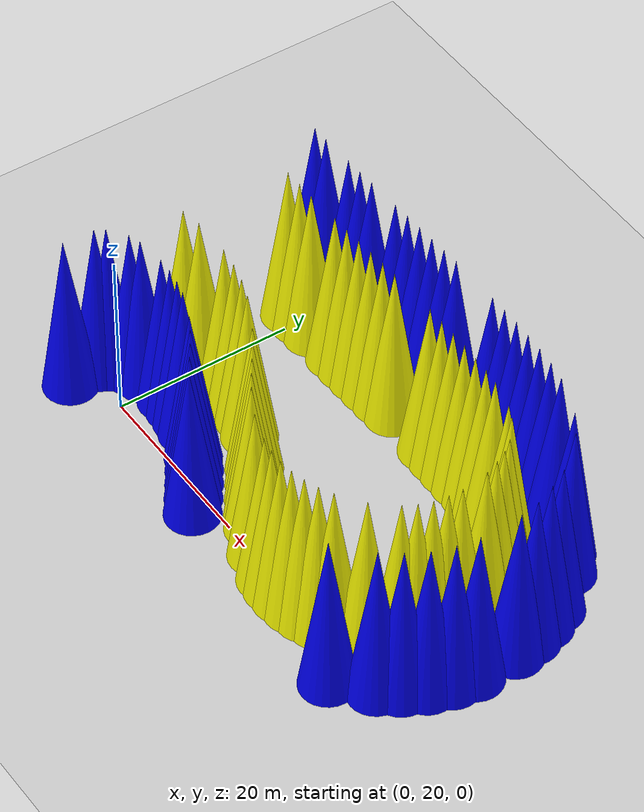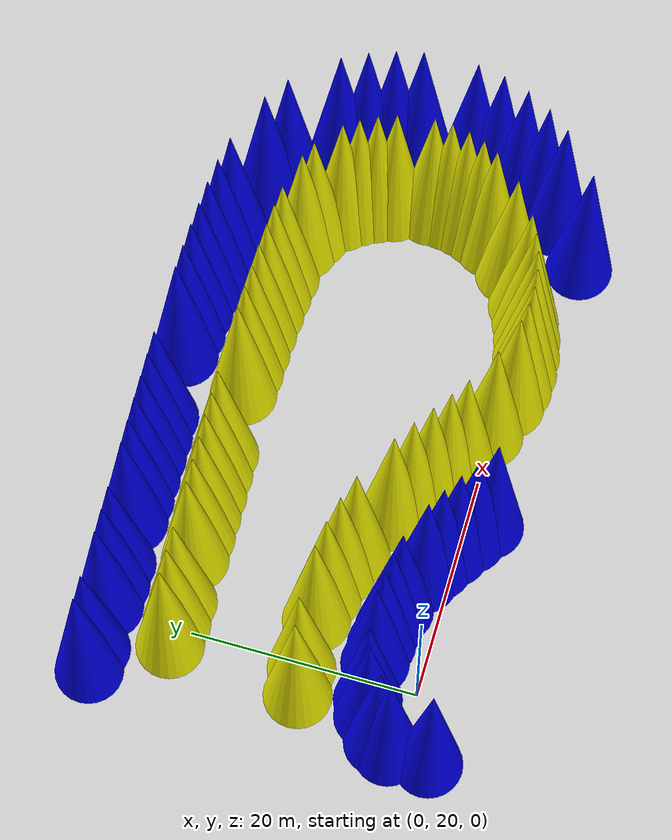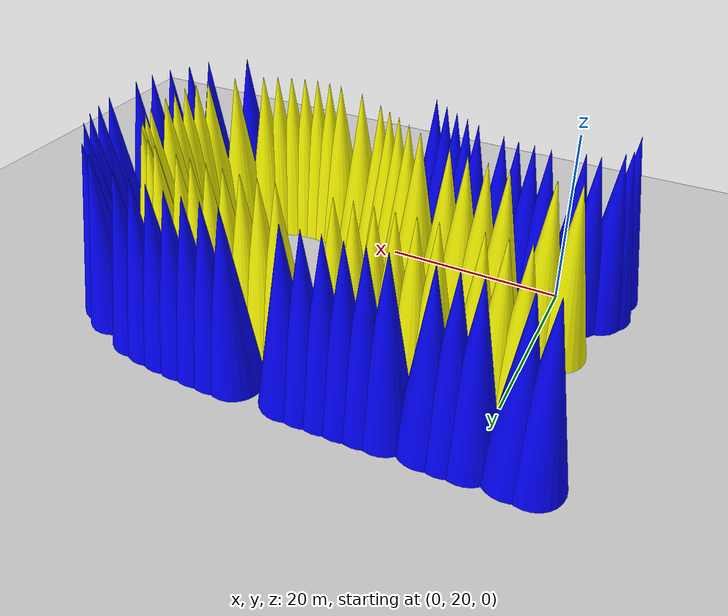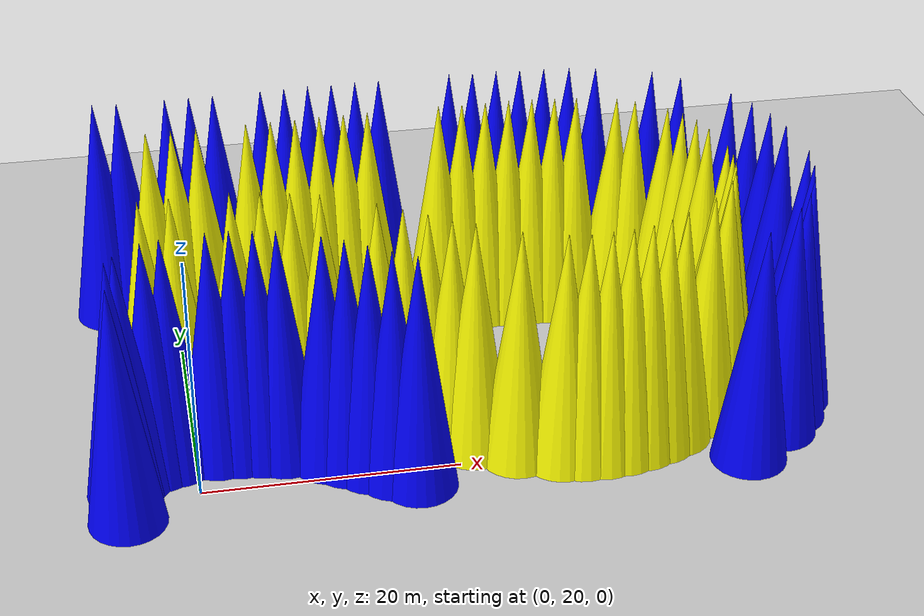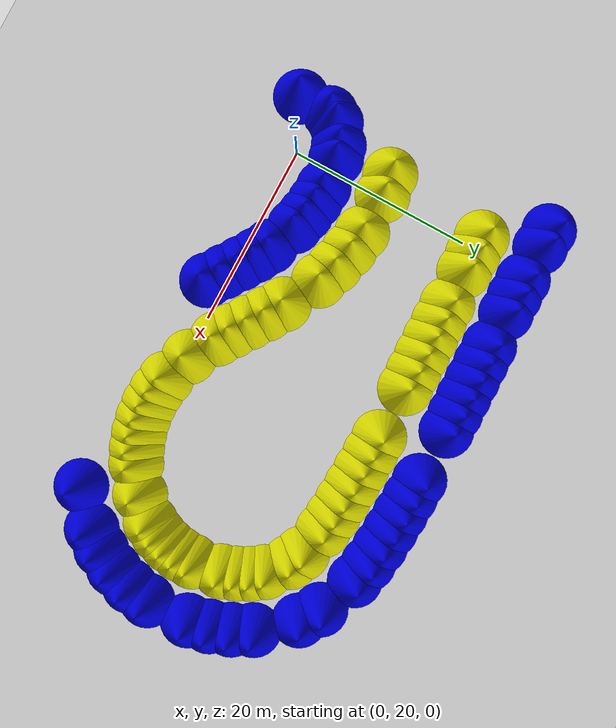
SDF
<sdf version="1.9">
 <world name="track">
  <model name="ground_plane">
   <static>true</static>
   <link name="link">
    <collision name="collision">
     <geometry><plane><normal>0 0 1</normal><size>100 100</size></plane></geometry>
    </collision>
    <visual name="visual">
     <geometry><plane><normal>0 0 1</normal><size>100 100</size></plane></geometry>
     <material>
      <ambient>0.8 0.8 0.8 1</ambient>
      <diffuse>0.8 0.8 0.8 1</diffuse>
      <specular>0.8 0.8 0.8 1</specular>
     </material>
    </visual>
    <inertial>
     <mass>1</mass>
     <inertia><ixx>1</ixx><ixy>0</ixy><ixz>0</ixz><iyy>1</iyy><iyz>0</iyz><izz>1</izz></inertia>
    </inertial>
   </link>
  </model>
  <model name="cones">
   <link name="cone_0_link">
    <collision name="cone_0_collision">
     <geometry><mesh><uri>model://cone/meshes/cone.stl</uri></mesh></geometry>
    </collision>
    <visual name="cone_0_visual">
     <geometry><mesh><uri>model://cone/meshes/cone.stl</uri></mesh></geometry>
     <material><ambient>1 1 0 1</ambient><diffuse>1 1 0 1</diffuse><specular>1 1 0 1</specular></material>
    </visual>
    <pose>6.49447171658257 41.7389113024907 0.0 0 0 0</pose>
   </link>
   <link name="cone_1_link">
    <collision name="cone_1_collision">
     <geometry><mesh><uri>model://cone/meshes/cone.stl</uri></mesh></geometry>
    </collision>
    <visual name="cone_1_visual">
     <geometry><mesh><uri>model://cone/meshes/cone.stl</uri></mesh></geometry>
     <material><ambient>1 1 0 1</ambient><diffuse>1 1 0 1</diffuse><specular>1 1 0 1</specular></material>
    </visual>
    <pose>8.49189149682204 41.8037451937836 0.0 0 0 0</pose>
   </link>
   <link name="cone_2_link">
    <collision name="cone_2_collision">
     <geometry><mesh><uri>model://cone/meshes/cone.stl</uri></mesh></geometry>
    </collision>
    <visual name="cone_2_visual">
     <geometry><mesh><uri>model://cone/meshes/cone.stl</uri></mesh></geometry>
     <material><ambient>1 1 0 1</ambient><diffuse>1 1 0 1</diffuse><specular>1 1 0 1</specular></material>
    </visual>
    <pose>10.4848751821667 41.8690573815958 0.0 0 0 0</pose>
   </link>
   <link name="cone_3_link">
    <collision name="cone_3_collision">
     <geometry><mesh><uri>model://cone/meshes/cone.stl</uri></mesh></geometry>
    </collision>
    <visual name="cone_3_visual">
     <geometry><mesh><uri>model://cone/meshes/cone.stl</uri></mesh></geometry>
     <material><ambient>1 1 0 1</ambient><diffuse>1 1 0 1</diffuse><specular>1 1 0 1</specular></material>
    </visual>
    <pose>12.473517040832 41.9319164105607 0.0 0 0 0</pose>
   </link>
   <link name="cone_4_link">
    <collision name="cone_4_collision">
     <geometry><mesh><uri>model://cone/meshes/cone.stl</uri></mesh></geometry>
    </collision>
    <visual name="cone_4_visual">
     <geometry><mesh><uri>model://cone/meshes/cone.stl</uri></mesh></geometry>
     <material><ambient>1 1 0 1</ambient><diffuse>1 1 0 1</diffuse><specular>1 1 0 1</specular></material>
    </visual>
    <pose>14.4579005366844 41.9894100214277 0.0 0 0 0</pose>
   </link>
   <link name="cone_5_link">
    <collision name="cone_5_collision">
     <geometry><mesh><uri>model://cone/meshes/cone.stl</uri></mesh></geometry>
    </collision>
    <visual name="cone_5_visual">
     <geometry><mesh><uri>model://cone/meshes/cone.stl</uri></mesh></geometry>
     <material><ambient>1 1 0 1</ambient><diffuse>1 1 0 1</diffuse><specular>1 1 0 1</specular></material>
    </visual>
    <pose>16.4380855350346 42.0386448286094 0.0 0 0 0</pose>
   </link>
   <link name="cone_6_link">
    <collision name="cone_6_collision">
     <geometry><mesh><uri>model://cone/meshes/cone.stl</uri></mesh></geometry>
    </collision>
    <visual name="cone_6_visual">
     <geometry><mesh><uri>model://cone/meshes/cone.stl</uri></mesh></geometry>
     <material><ambient>1 1 0 1</ambient><diffuse>1 1 0 1</diffuse><specular>1 1 0 1</specular></material>
    </visual>
    <pose>22.3534294484539 42.1081444836209 0.0 0 0 0</pose>
   </link>
   <link name="cone_7_link">
    <collision name="cone_7_collision">
     <geometry><mesh><uri>model://cone/meshes/cone.stl</uri></mesh></geometry>
    </collision>
    <visual name="cone_7_visual">
     <geometry><mesh><uri>model://cone/meshes/cone.stl</uri></mesh></geometry>
     <material><ambient>1 1 0 1</ambient><diffuse>1 1 0 1</diffuse><specular>1 1 0 1</specular></material>
    </visual>
    <pose>24.3165071700586 42.0957886616701 0.0 0 0 0</pose>
   </link>
   <link name="cone_8_link">
    <collision name="cone_8_collision">
     <geometry><mesh><uri>model://cone/meshes/cone.stl</uri></mesh></geometry>
    </collision>
    <visual name="cone_8_visual">
     <geometry><mesh><uri>model://cone/meshes/cone.stl</uri></mesh></geometry>
     <material><ambient>1 1 0 1</ambient><diffuse>1 1 0 1</diffuse><specular>1 1 0 1</specular></material>
    </visual>
    <pose>26.2748937812757 42.0609961552005 0.0 0 0 0</pose>
   </link>
   <link name="cone_9_link">
    <collision name="cone_9_collision">
     <geometry><mesh><uri>model://cone/meshes/cone.stl</uri></mesh></geometry>
    </collision>
    <visual name="cone_9_visual">
     <geometry><mesh><uri>model://cone/meshes/cone.stl</uri></mesh></geometry>
     <material><ambient>1 1 0 1</ambient><diffuse>1 1 0 1</diffuse><specular>1 1 0 1</specular></material>
    </visual>
    <pose>28.2282468521326 42.0009961057027 0.0 0 0 0</pose>
   </link>
   <link name="cone_10_link">
    <collision name="cone_10_collision">
     <geometry><mesh><uri>model://cone/meshes/cone.stl</uri></mesh></geometry>
    </collision>
    <visual name="cone_10_visual">
     <geometry><mesh><uri>model://cone/meshes/cone.stl</uri></mesh></geometry>
     <material><ambient>1 1 0 1</ambient><diffuse>1 1 0 1</diffuse><specular>1 1 0 1</specular></material>
    </visual>
    <pose>30.1761149294924 41.9130441723441 0.0 0 0 0</pose>
   </link>
   <link name="cone_11_link">
    <collision name="cone_11_collision">
     <geometry><mesh><uri>model://cone/meshes/cone.stl</uri></mesh></geometry>
    </collision>
    <visual name="cone_11_visual">
     <geometry><mesh><uri>model://cone/meshes/cone.stl</uri></mesh></geometry>
     <material><ambient>1 1 0 1</ambient><diffuse>1 1 0 1</diffuse><specular>1 1 0 1</specular></material>
    </visual>
    <pose>32.0795946202318 41.7896079706255 0.0 0 0 0</pose>
   </link>
   <link name="cone_12_link">
    <collision name="cone_12_collision">
     <geometry><mesh><uri>model://cone/meshes/cone.stl</uri></mesh></geometry>
    </collision>
    <visual name="cone_12_visual">
     <geometry><mesh><uri>model://cone/meshes/cone.stl</uri></mesh></geometry>
     <material><ambient>1 1 0 1</ambient><diffuse>1 1 0 1</diffuse><specular>1 1 0 1</specular></material>
    </visual>
    <pose>33.88171993278 41.5914171121172 0.0 0 0 0</pose>
   </link>
   <link name="cone_13_link">
    <collision name="cone_13_collision">
     <geometry><mesh><uri>model://cone/meshes/cone.stl</uri></mesh></geometry>
    </collision>
    <visual name="cone_13_visual">
     <geometry><mesh><uri>model://cone/meshes/cone.stl</uri></mesh></geometry>
     <material><ambient>1 1 0 1</ambient><diffuse>1 1 0 1</diffuse><specular>1 1 0 1</specular></material>
    </visual>
    <pose>37.1238045770298 40.8042280456036 0.0 0 0 0</pose>
   </link>
   <link name="cone_14_link">
    <collision name="cone_14_collision">
     <geometry><mesh><uri>model://cone/meshes/cone.stl</uri></mesh></geometry>
    </collision>
    <visual name="cone_14_visual">
     <geometry><mesh><uri>model://cone/meshes/cone.stl</uri></mesh></geometry>
     <material><ambient>1 1 0 1</ambient><diffuse>1 1 0 1</diffuse><specular>1 1 0 1</specular></material>
    </visual>
    <pose>38.5108000329817 40.1631834270328 0.0 0 0 0</pose>
   </link>
   <link name="cone_15_link">
    <collision name="cone_15_collision">
     <geometry><mesh><uri>model://cone/meshes/cone.stl</uri></mesh></geometry>
    </collision>
    <visual name="cone_15_visual">
     <geometry><mesh><uri>model://cone/meshes/cone.stl</uri></mesh></geometry>
     <material><ambient>1 1 0 1</ambient><diffuse>1 1 0 1</diffuse><specular>1 1 0 1</specular></material>
    </visual>
    <pose>40.7498148915033 38.2980872410971 0.0 0 0 0</pose>
   </link>
   <link name="cone_16_link">
    <collision name="cone_16_collision">
     <geometry><mesh><uri>model://cone/meshes/cone.stl</uri></mesh></geometry>
    </collision>
    <visual name="cone_16_visual">
     <geometry><mesh><uri>model://cone/meshes/cone.stl</uri></mesh></geometry>
     <material><ambient>1 1 0 1</ambient><diffuse>1 1 0 1</diffuse><specular>1 1 0 1</specular></material>
    </visual>
    <pose>41.6428012725483 37.057274095852 0.0 0 0 0</pose>
   </link>
   <link name="cone_17_link">
    <collision name="cone_17_collision">
     <geometry><mesh><uri>model://cone/meshes/cone.stl</uri></mesh></geometry>
    </collision>
    <visual name="cone_17_visual">
     <geometry><mesh><uri>model://cone/meshes/cone.stl</uri></mesh></geometry>
     <material><ambient>1 1 0 1</ambient><diffuse>1 1 0 1</diffuse><specular>1 1 0 1</specular></material>
    </visual>
    <pose>42.3684952713925 35.6541128117207 0.0 0 0 0</pose>
   </link>
   <link name="cone_18_link">
    <collision name="cone_18_collision">
     <geometry><mesh><uri>model://cone/meshes/cone.stl</uri></mesh></geometry>
    </collision>
    <visual name="cone_18_visual">
     <geometry><mesh><uri>model://cone/meshes/cone.stl</uri></mesh></geometry>
     <material><ambient>1 1 0 1</ambient><diffuse>1 1 0 1</diffuse><specular>1 1 0 1</specular></material>
    </visual>
    <pose>42.923741279885 34.1220862330776 0.0 0 0 0</pose>
   </link>
   <link name="cone_19_link">
    <collision name="cone_19_collision">
     <geometry><mesh><uri>model://cone/meshes/cone.stl</uri></mesh></geometry>
    </collision>
    <visual name="cone_19_visual">
     <geometry><mesh><uri>model://cone/meshes/cone.stl</uri></mesh></geometry>
     <material><ambient>1 1 0 1</ambient><diffuse>1 1 0 1</diffuse><specular>1 1 0 1</specular></material>
    </visual>
    <pose>43.4562377484922 30.9418382209873 0.0 0 0 0</pose>
   </link>
   <link name="cone_20_link">
    <collision name="cone_20_collision">
     <geometry><mesh><uri>model://cone/meshes/cone.stl</uri></mesh></geometry>
    </collision>
    <visual name="cone_20_visual">
     <geometry><mesh><uri>model://cone/meshes/cone.stl</uri></mesh></geometry>
     <material><ambient>1 1 0 1</ambient><diffuse>1 1 0 1</diffuse><specular>1 1 0 1</specular></material>
    </visual>
    <pose>43.4041825643156 29.3682424552239 0.0 0 0 0</pose>
   </link>
   <link name="cone_21_link">
    <collision name="cone_21_collision">
     <geometry><mesh><uri>model://cone/meshes/cone.stl</uri></mesh></geometry>
    </collision>
    <visual name="cone_21_visual">
     <geometry><mesh><uri>model://cone/meshes/cone.stl</uri></mesh></geometry>
     <material><ambient>1 1 0 1</ambient><diffuse>1 1 0 1</diffuse><specular>1 1 0 1</specular></material>
    </visual>
    <pose>43.1310900802234 27.8454335309325 0.0 0 0 0</pose>
   </link>
   <link name="cone_22_link">
    <collision name="cone_22_collision">
     <geometry><mesh><uri>model://cone/meshes/cone.stl</uri></mesh></geometry>
    </collision>
    <visual name="cone_22_visual">
     <geometry><mesh><uri>model://cone/meshes/cone.stl</uri></mesh></geometry>
     <material><ambient>1 1 0 1</ambient><diffuse>1 1 0 1</diffuse><specular>1 1 0 1</specular></material>
    </visual>
    <pose>42.6373380962399 26.4081334491868 0.0 0 0 0</pose>
   </link>
   <link name="cone_23_link">
    <collision name="cone_23_collision">
     <geometry><mesh><uri>model://cone/meshes/cone.stl</uri></mesh></geometry>
    </collision>
    <visual name="cone_23_visual">
     <geometry><mesh><uri>model://cone/meshes/cone.stl</uri></mesh></geometry>
     <material><ambient>1 1 0 1</ambient><diffuse>1 1 0 1</diffuse><specular>1 1 0 1</specular></material>
    </visual>
    <pose>41.92136068956 25.0723633391567 0.0 0 0 0</pose>
   </link>
   <link name="cone_24_link">
    <collision name="cone_24_collision">
     <geometry><mesh><uri>model://cone/meshes/cone.stl</uri></mesh></geometry>
    </collision>
    <visual name="cone_24_visual">
     <geometry><mesh><uri>model://cone/meshes/cone.stl</uri></mesh></geometry>
     <material><ambient>1 1 0 1</ambient><diffuse>1 1 0 1</diffuse><specular>1 1 0 1</specular></material>
    </visual>
    <pose>39.8493389129556 22.6733478226331 0.0 0 0 0</pose>
   </link>
   <link name="cone_25_link">
    <collision name="cone_25_collision">
     <geometry><mesh><uri>model://cone/meshes/cone.stl</uri></mesh></geometry>
    </collision>
    <visual name="cone_25_visual">
     <geometry><mesh><uri>model://cone/meshes/cone.stl</uri></mesh></geometry>
     <material><ambient>1 1 0 1</ambient><diffuse>1 1 0 1</diffuse><specular>1 1 0 1</specular></material>
    </visual>
    <pose>37.1330772214184 20.7325660900255 0.0 0 0 0</pose>
   </link>
   <link name="cone_26_link">
    <collision name="cone_26_collision">
     <geometry><mesh><uri>model://cone/meshes/cone.stl</uri></mesh></geometry>
    </collision>
    <visual name="cone_26_visual">
     <geometry><mesh><uri>model://cone/meshes/cone.stl</uri></mesh></geometry>
     <material><ambient>1 1 0 1</ambient><diffuse>1 1 0 1</diffuse><specular>1 1 0 1</specular></material>
    </visual>
    <pose>35.6438750732877 19.9947555768891 0.0 0 0 0</pose>
   </link>
   <link name="cone_27_link">
    <collision name="cone_27_collision">
     <geometry><mesh><uri>model://cone/meshes/cone.stl</uri></mesh></geometry>
    </collision>
    <visual name="cone_27_visual">
     <geometry><mesh><uri>model://cone/meshes/cone.stl</uri></mesh></geometry>
     <material><ambient>1 1 0 1</ambient><diffuse>1 1 0 1</diffuse><specular>1 1 0 1</specular></material>
    </visual>
    <pose>34.097019809549 19.4366654165469 0.0 0 0 0</pose>
   </link>
   <link name="cone_28_link">
    <collision name="cone_28_collision">
     <geometry><mesh><uri>model://cone/meshes/cone.stl</uri></mesh></geometry>
    </collision>
    <visual name="cone_28_visual">
     <geometry><mesh><uri>model://cone/meshes/cone.stl</uri></mesh></geometry>
     <material><ambient>1 1 0 1</ambient><diffuse>1 1 0 1</diffuse><specular>1 1 0 1</specular></material>
    </visual>
    <pose>32.5117013027651 19.0709696852617 0.0 0 0 0</pose>
   </link>
   <link name="cone_29_link">
    <collision name="cone_29_collision">
     <geometry><mesh><uri>model://cone/meshes/cone.stl</uri></mesh></geometry>
    </collision>
    <visual name="cone_29_visual">
     <geometry><mesh><uri>model://cone/meshes/cone.stl</uri></mesh></geometry>
     <material><ambient>1 1 0 1</ambient><diffuse>1 1 0 1</diffuse><specular>1 1 0 1</specular></material>
    </visual>
    <pose>30.9105163807122 18.908114245835 0.0 0 0 0</pose>
   </link>
   <link name="cone_30_link">
    <collision name="cone_30_collision">
     <geometry><mesh><uri>model://cone/meshes/cone.stl</uri></mesh></geometry>
    </collision>
    <visual name="cone_30_visual">
     <geometry><mesh><uri>model://cone/meshes/cone.stl</uri></mesh></geometry>
     <material><ambient>1 1 0 1</ambient><diffuse>1 1 0 1</diffuse><specular>1 1 0 1</specular></material>
    </visual>
    <pose>29.305019764528 18.9545691109581 0.0 0 0 0</pose>
   </link>
   <link name="cone_31_link">
    <collision name="cone_31_collision">
     <geometry><mesh><uri>model://cone/meshes/cone.stl</uri></mesh></geometry>
    </collision>
    <visual name="cone_31_visual">
     <geometry><mesh><uri>model://cone/meshes/cone.stl</uri></mesh></geometry>
     <material><ambient>1 1 0 1</ambient><diffuse>1 1 0 1</diffuse><specular>1 1 0 1</specular></material>
    </visual>
    <pose>27.6851829730976 19.2045278218877 0.0 0 0 0</pose>
   </link>
   <link name="cone_32_link">
    <collision name="cone_32_collision">
     <geometry><mesh><uri>model://cone/meshes/cone.stl</uri></mesh></geometry>
    </collision>
    <visual name="cone_32_visual">
     <geometry><mesh><uri>model://cone/meshes/cone.stl</uri></mesh></geometry>
     <material><ambient>1 1 0 1</ambient><diffuse>1 1 0 1</diffuse><specular>1 1 0 1</specular></material>
    </visual>
    <pose>24.4759113345748 20.2570787967781 0.0 0 0 0</pose>
   </link>
   <link name="cone_33_link">
    <collision name="cone_33_collision">
     <geometry><mesh><uri>model://cone/meshes/cone.stl</uri></mesh></geometry>
    </collision>
    <visual name="cone_33_visual">
     <geometry><mesh><uri>model://cone/meshes/cone.stl</uri></mesh></geometry>
     <material><ambient>1 1 0 1</ambient><diffuse>1 1 0 1</diffuse><specular>1 1 0 1</specular></material>
    </visual>
    <pose>21.3685688158133 21.9377743574784 0.0 0 0 0</pose>
   </link>
   <link name="cone_34_link">
    <collision name="cone_34_collision">
     <geometry><mesh><uri>model://cone/meshes/cone.stl</uri></mesh></geometry>
    </collision>
    <visual name="cone_34_visual">
     <geometry><mesh><uri>model://cone/meshes/cone.stl</uri></mesh></geometry>
     <material><ambient>1 1 0 1</ambient><diffuse>1 1 0 1</diffuse><specular>1 1 0 1</specular></material>
    </visual>
    <pose>19.8072187451783 22.9775182612717 0.0 0 0 0</pose>
   </link>
   <link name="cone_35_link">
    <collision name="cone_35_collision">
     <geometry><mesh><uri>model://cone/meshes/cone.stl</uri></mesh></geometry>
    </collision>
    <visual name="cone_35_visual">
     <geometry><mesh><uri>model://cone/meshes/cone.stl</uri></mesh></geometry>
     <material><ambient>1 1 0 1</ambient><diffuse>1 1 0 1</diffuse><specular>1 1 0 1</specular></material>
    </visual>
    <pose>18.2040616100214 24.1054677217171 0.0 0 0 0</pose>
   </link>
   <link name="cone_36_link">
    <collision name="cone_36_collision">
     <geometry><mesh><uri>model://cone/meshes/cone.stl</uri></mesh></geometry>
    </collision>
    <visual name="cone_36_visual">
     <geometry><mesh><uri>model://cone/meshes/cone.stl</uri></mesh></geometry>
     <material><ambient>1 1 0 1</ambient><diffuse>1 1 0 1</diffuse><specular>1 1 0 1</specular></material>
    </visual>
    <pose>16.5291821840059 25.277806927272 0.0 0 0 0</pose>
   </link>
   <link name="cone_37_link">
    <collision name="cone_37_collision">
     <geometry><mesh><uri>model://cone/meshes/cone.stl</uri></mesh></geometry>
    </collision>
    <visual name="cone_37_visual">
     <geometry><mesh><uri>model://cone/meshes/cone.stl</uri></mesh></geometry>
     <material><ambient>1 1 0 1</ambient><diffuse>1 1 0 1</diffuse><specular>1 1 0 1</specular></material>
    </visual>
    <pose>14.7490275765791 26.4446189166734 0.0 0 0 0</pose>
   </link>
   <link name="cone_38_link">
    <collision name="cone_38_collision">
     <geometry><mesh><uri>model://cone/meshes/cone.stl</uri></mesh></geometry>
    </collision>
    <visual name="cone_38_visual">
     <geometry><mesh><uri>model://cone/meshes/cone.stl</uri></mesh></geometry>
     <material><ambient>1 1 0 1</ambient><diffuse>1 1 0 1</diffuse><specular>1 1 0 1</specular></material>
    </visual>
    <pose>10.7566166245341 28.5122919557571 0.0 0 0 0</pose>
   </link>
   <link name="cone_39_link">
    <collision name="cone_39_collision">
     <geometry><mesh><uri>model://cone/meshes/cone.stl</uri></mesh></geometry>
    </collision>
    <visual name="cone_39_visual">
     <geometry><mesh><uri>model://cone/meshes/cone.stl</uri></mesh></geometry>
     <material><ambient>1 1 0 1</ambient><diffuse>1 1 0 1</diffuse><specular>1 1 0 1</specular></material>
    </visual>
    <pose>8.59035703212379 29.2671114310357 0.0 0 0 0</pose>
   </link>
   <link name="cone_40_link">
    <collision name="cone_40_collision">
     <geometry><mesh><uri>model://cone/meshes/cone.stl</uri></mesh></geometry>
    </collision>
    <visual name="cone_40_visual">
     <geometry><mesh><uri>model://cone/meshes/cone.stl</uri></mesh></geometry>
     <material><ambient>1 1 0 1</ambient><diffuse>1 1 0 1</diffuse><specular>1 1 0 1</specular></material>
    </visual>
    <pose>6.36970146209175 29.8034933598624 0.0 0 0 0</pose>
   </link>
   <link name="cone_41_link">
    <collision name="cone_41_collision">
     <geometry><mesh><uri>model://cone/meshes/cone.stl</uri></mesh></geometry>
    </collision>
    <visual name="cone_41_visual">
     <geometry><mesh><uri>model://cone/meshes/cone.stl</uri></mesh></geometry>
     <material><ambient>1 1 0 1</ambient><diffuse>1 1 0 1</diffuse><specular>1 1 0 1</specular></material>
    </visual>
    <pose>4.11753580708921 30.1252372241127 0.0 0 0 0</pose>
   </link>
   <link name="cone_42_link">
    <collision name="cone_42_collision">
     <geometry><mesh><uri>model://cone/meshes/cone.stl</uri></mesh></geometry>
    </collision>
    <visual name="cone_42_visual">
     <geometry><mesh><uri>model://cone/meshes/cone.stl</uri></mesh></geometry>
     <material><ambient>1 1 0 1</ambient><diffuse>1 1 0 1</diffuse><specular>1 1 0 1</specular></material>
    </visual>
    <pose>-0.405973075502234 30.1500578730274 0.0 0 0 0</pose>
   </link>
   <link name="cone_43_link">
    <collision name="cone_43_collision">
     <geometry><mesh><uri>model://cone/meshes/cone.stl</uri></mesh></geometry>
    </collision>
    <visual name="cone_43_visual">
     <geometry><mesh><uri>model://cone/meshes/cone.stl</uri></mesh></geometry>
     <material><ambient>1 1 0 1</ambient><diffuse>1 1 0 1</diffuse><specular>1 1 0 1</specular></material>
    </visual>
    <pose>-2.75740378439869 29.8083496207198 0.0 0 0 0</pose>
   </link>
   <link name="cone_143_link">
    <collision name="cone_143_collision">
     <geometry><mesh><uri>model://cone/meshes/cone.stl</uri></mesh></geometry>
    </collision>
    <visual name="cone_143_visual">
     <geometry><mesh><uri>model://cone/meshes/cone.stl</uri></mesh></geometry>
     <material><ambient>1 1 0 1</ambient><diffuse>1 1 0 1</diffuse><specular>1 1 0 1</specular></material>
    </visual>
    <pose>-1.53976115651896 41.5427010208205 0.0 0 0 0</pose>
   </link>
   <link name="cone_144_link">
    <collision name="cone_144_collision">
     <geometry><mesh><uri>model://cone/meshes/cone.stl</uri></mesh></geometry>
    </collision>
    <visual name="cone_144_visual">
     <geometry><mesh><uri>model://cone/meshes/cone.stl</uri></mesh></geometry>
     <material><ambient>1 1 0 1</ambient><diffuse>1 1 0 1</diffuse><specular>1 1 0 1</specular></material>
    </visual>
    <pose>0.4754310943428 41.5765527022834 0.0 0 0 0</pose>
   </link>
   <link name="cone_145_link">
    <collision name="cone_145_collision">
     <geometry><mesh><uri>model://cone/meshes/cone.stl</uri></mesh></geometry>
    </collision>
    <visual name="cone_145_visual">
     <geometry><mesh><uri>model://cone/meshes/cone.stl</uri></mesh></geometry>
     <material><ambient>1 1 0 1</ambient><diffuse>1 1 0 1</diffuse><specular>1 1 0 1</specular></material>
    </visual>
    <pose>2.48619653317858 41.622438779726 0.0 0 0 0</pose>
   </link>
   <link name="cone_146_link">
    <collision name="cone_146_collision">
     <geometry><mesh><uri>model://cone/meshes/cone.stl</uri></mesh></geometry>
    </collision>
    <visual name="cone_146_visual">
     <geometry><mesh><uri>model://cone/meshes/cone.stl</uri></mesh></geometry>
     <material><ambient>1 1 0 1</ambient><diffuse>1 1 0 1</diffuse><specular>1 1 0 1</specular></material>
    </visual>
    <pose>6.49447171658257 41.7389113024907 0.0 0 0 0</pose>
   </link>
   <link name="cone_147_link">
    <collision name="cone_147_collision">
     <geometry><mesh><uri>model://cone/meshes/cone.stl</uri></mesh></geometry>
    </collision>
    <visual name="cone_147_visual">
     <geometry><mesh><uri>model://cone/meshes/cone.stl</uri></mesh></geometry>
     <material><ambient>1 1 0 1</ambient><diffuse>1 1 0 1</diffuse><specular>1 1 0 1</specular></material>
    </visual>
    <pose>8.49189149682204 41.8037451937836 0.0 0 0 0</pose>
   </link>
   <link name="cone_148_link">
    <collision name="cone_148_collision">
     <geometry><mesh><uri>model://cone/meshes/cone.stl</uri></mesh></geometry>
    </collision>
    <visual name="cone_148_visual">
     <geometry><mesh><uri>model://cone/meshes/cone.stl</uri></mesh></geometry>
     <material><ambient>1 1 0 1</ambient><diffuse>1 1 0 1</diffuse><specular>1 1 0 1</specular></material>
    </visual>
    <pose>10.4848751821667 41.8690573815958 0.0 0 0 0</pose>
   </link>
   <link name="cone_149_link">
    <collision name="cone_149_collision">
     <geometry><mesh><uri>model://cone/meshes/cone.stl</uri></mesh></geometry>
    </collision>
    <visual name="cone_149_visual">
     <geometry><mesh><uri>model://cone/meshes/cone.stl</uri></mesh></geometry>
     <material><ambient>1 1 0 1</ambient><diffuse>1 1 0 1</diffuse><specular>1 1 0 1</specular></material>
    </visual>
    <pose>12.473517040832 41.9319164105607 0.0 0 0 0</pose>
   </link>
   <link name="cone_150_link">
    <collision name="cone_150_collision">
     <geometry><mesh><uri>model://cone/meshes/cone.stl</uri></mesh></geometry>
    </collision>
    <visual name="cone_150_visual">
     <geometry><mesh><uri>model://cone/meshes/cone.stl</uri></mesh></geometry>
     <material><ambient>1 1 0 1</ambient><diffuse>1 1 0 1</diffuse><specular>1 1 0 1</specular></material>
    </visual>
    <pose>14.4579005366844 41.9894100214277 0.0 0 0 0</pose>
   </link>
   <link name="cone_0_link">
    <collision name="cone_0_collision">
     <geometry><mesh><uri>model://cone/meshes/cone.stl</uri></mesh></geometry>
    </collision>
    <visual name="cone_0_visual">
     <geometry><mesh><uri>model://cone/meshes/cone.stl</uri></mesh></geometry>
     <material><ambient>0 0 1 1</ambient><diffuse>0 0 1 1</diffuse><specular>0 0 1 1</specular></material>
    </visual>
    <pose>8.29483356036796 47.8005083348189 0.0 0 0 0</pose>
   </link>
   <link name="cone_1_link">
    <collision name="cone_1_collision">
     <geometry><mesh><uri>model://cone/meshes/cone.stl</uri></mesh></geometry>
    </collision>
    <visual name="cone_1_visual">
     <geometry><mesh><uri>model://cone/meshes/cone.stl</uri></mesh></geometry>
     <material><ambient>0 0 1 1</ambient><diffuse>0 0 1 1</diffuse><specular>0 0 1 1</specular></material>
    </visual>
    <pose>10.2903642978411 47.8659036790991 0.0 0 0 0</pose>
   </link>
   <link name="cone_2_link">
    <collision name="cone_2_collision">
     <geometry><mesh><uri>model://cone/meshes/cone.stl</uri></mesh></geometry>
    </collision>
    <visual name="cone_2_visual">
     <geometry><mesh><uri>model://cone/meshes/cone.stl</uri></mesh></geometry>
     <material><ambient>0 0 1 1</ambient><diffuse>0 0 1 1</diffuse><specular>0 0 1 1</specular></material>
    </visual>
    <pose>12.2903853701921 47.9291209919643 0.0 0 0 0</pose>
   </link>
   <link name="cone_3_link">
    <collision name="cone_3_collision">
     <geometry><mesh><uri>model://cone/meshes/cone.stl</uri></mesh></geometry>
    </collision>
    <visual name="cone_3_visual">
     <geometry><mesh><uri>model://cone/meshes/cone.stl</uri></mesh></geometry>
     <material><ambient>0 0 1 1</ambient><diffuse>0 0 1 1</diffuse><specular>0 0 1 1</specular></material>
    </visual>
    <pose>14.2949817462715 47.9871977358879 0.0 0 0 0</pose>
   </link>
   <link name="cone_4_link">
    <collision name="cone_4_collision">
     <geometry><mesh><uri>model://cone/meshes/cone.stl</uri></mesh></geometry>
    </collision>
    <visual name="cone_4_visual">
     <geometry><mesh><uri>model://cone/meshes/cone.stl</uri></mesh></geometry>
     <material><ambient>0 0 1 1</ambient><diffuse>0 0 1 1</diffuse><specular>0 0 1 1</specular></material>
    </visual>
    <pose>16.3042155724446 48.0371512121282 0.0 0 0 0</pose>
   </link>
   <link name="cone_5_link">
    <collision name="cone_5_collision">
     <geometry><mesh><uri>model://cone/meshes/cone.stl</uri></mesh></geometry>
    </collision>
    <visual name="cone_5_visual">
     <geometry><mesh><uri>model://cone/meshes/cone.stl</uri></mesh></geometry>
     <material><ambient>0 0 1 1</ambient><diffuse>0 0 1 1</diffuse><specular>0 0 1 1</specular></material>
    </visual>
    <pose>18.318112860148 48.0759783968909 0.0 0 0 0</pose>
   </link>
   <link name="cone_6_link">
    <collision name="cone_6_collision">
     <geometry><mesh><uri>model://cone/meshes/cone.stl</uri></mesh></geometry>
    </collision>
    <visual name="cone_6_visual">
     <geometry><mesh><uri>model://cone/meshes/cone.stl</uri></mesh></geometry>
     <material><ambient>0 0 1 1</ambient><diffuse>0 0 1 1</diffuse><specular>0 0 1 1</specular></material>
    </visual>
    <pose>24.3872198920862 48.0953719564451 0.0 0 0 0</pose>
   </link>
   <link name="cone_7_link">
    <collision name="cone_7_collision">
     <geometry><mesh><uri>model://cone/meshes/cone.stl</uri></mesh></geometry>
    </collision>
    <visual name="cone_7_visual">
     <geometry><mesh><uri>model://cone/meshes/cone.stl</uri></mesh></geometry>
     <material><ambient>0 0 1 1</ambient><diffuse>0 0 1 1</diffuse><specular>0 0 1 1</specular></material>
    </visual>
    <pose>26.4188343006777 48.0592693339474 0.0 0 0 0</pose>
   </link>
   <link name="cone_8_link">
    <collision name="cone_8_collision">
     <geometry><mesh><uri>model://cone/meshes/cone.stl</uri></mesh></geometry>
    </collision>
    <visual name="cone_8_visual">
     <geometry><mesh><uri>model://cone/meshes/cone.stl</uri></mesh></geometry>
     <material><ambient>0 0 1 1</ambient><diffuse>0 0 1 1</diffuse><specular>0 0 1 1</specular></material>
    </visual>
    <pose>28.4542241392916 47.9967391176812 0.0 0 0 0</pose>
   </link>
   <link name="cone_9_link">
    <collision name="cone_9_collision">
     <geometry><mesh><uri>model://cone/meshes/cone.stl</uri></mesh></geometry>
    </collision>
    <visual name="cone_9_visual">
     <geometry><mesh><uri>model://cone/meshes/cone.stl</uri></mesh></geometry>
     <material><ambient>0 0 1 1</ambient><diffuse>0 0 1 1</diffuse><specular>0 0 1 1</specular></material>
    </visual>
    <pose>30.4929111587893 47.9046750145358 0.0 0 0 0</pose>
   </link>
   <link name="cone_10_link">
    <collision name="cone_10_collision">
     <geometry><mesh><uri>model://cone/meshes/cone.stl</uri></mesh></geometry>
    </collision>
    <visual name="cone_10_visual">
     <geometry><mesh><uri>model://cone/meshes/cone.stl</uri></mesh></geometry>
     <material><ambient>0 0 1 1</ambient><diffuse>0 0 1 1</diffuse><specular>0 0 1 1</specular></material>
    </visual>
    <pose>32.5715480310539 47.7694057800486 0.0 0 0 0</pose>
   </link>
   <link name="cone_11_link">
    <collision name="cone_11_collision">
     <geometry><mesh><uri>model://cone/meshes/cone.stl</uri></mesh></geometry>
    </collision>
    <visual name="cone_11_visual">
     <geometry><mesh><uri>model://cone/meshes/cone.stl</uri></mesh></geometry>
     <material><ambient>0 0 1 1</ambient><diffuse>0 0 1 1</diffuse><specular>0 0 1 1</specular></material>
    </visual>
    <pose>34.7354354110013 47.5303707137414 0.0 0 0 0</pose>
   </link>
   <link name="cone_12_link">
    <collision name="cone_12_collision">
     <geometry><mesh><uri>model://cone/meshes/cone.stl</uri></mesh></geometry>
    </collision>
    <visual name="cone_12_visual">
     <geometry><mesh><uri>model://cone/meshes/cone.stl</uri></mesh></geometry>
     <material><ambient>0 0 1 1</ambient><diffuse>0 0 1 1</diffuse><specular>0 0 1 1</specular></material>
    </visual>
    <pose>36.9671887094624 47.1090924863221 0.0 0 0 0</pose>
   </link>
   <link name="cone_13_link">
    <collision name="cone_13_collision">
     <geometry><mesh><uri>model://cone/meshes/cone.stl</uri></mesh></geometry>
    </collision>
    <visual name="cone_13_visual">
     <geometry><mesh><uri>model://cone/meshes/cone.stl</uri></mesh></geometry>
     <material><ambient>0 0 1 1</ambient><diffuse>0 0 1 1</diffuse><specular>0 0 1 1</specular></material>
    </visual>
    <pose>41.4608084515852 45.3878796220444 0.0 0 0 0</pose>
   </link>
   <link name="cone_14_link">
    <collision name="cone_14_collision">
     <geometry><mesh><uri>model://cone/meshes/cone.stl</uri></mesh></geometry>
    </collision>
    <visual name="cone_14_visual">
     <geometry><mesh><uri>model://cone/meshes/cone.stl</uri></mesh></geometry>
     <material><ambient>0 0 1 1</ambient><diffuse>0 0 1 1</diffuse><specular>0 0 1 1</specular></material>
    </visual>
    <pose>43.5486168233166 43.9466679046951 0.0 0 0 0</pose>
   </link>
   <link name="cone_15_link">
    <collision name="cone_15_collision">
     <geometry><mesh><uri>model://cone/meshes/cone.stl</uri></mesh></geometry>
    </collision>
    <visual name="cone_15_visual">
     <geometry><mesh><uri>model://cone/meshes/cone.stl</uri></mesh></geometry>
     <material><ambient>0 0 1 1</ambient><diffuse>0 0 1 1</diffuse><specular>0 0 1 1</specular></material>
    </visual>
    <pose>46.7637769841785 40.1838709296144 0.0 0 0 0</pose>
   </link>
   <link name="cone_16_link">
    <collision name="cone_16_collision">
     <geometry><mesh><uri>model://cone/meshes/cone.stl</uri></mesh></geometry>
    </collision>
    <visual name="cone_16_visual">
     <geometry><mesh><uri>model://cone/meshes/cone.stl</uri></mesh></geometry>
     <material><ambient>0 0 1 1</ambient><diffuse>0 0 1 1</diffuse><specular>0 0 1 1</specular></material>
    </visual>
    <pose>47.8711744070693 38.045874156376 0.0 0 0 0</pose>
   </link>
   <link name="cone_17_link">
    <collision name="cone_17_collision">
     <geometry><mesh><uri>model://cone/meshes/cone.stl</uri></mesh></geometry>
    </collision>
    <visual name="cone_17_visual">
     <geometry><mesh><uri>model://cone/meshes/cone.stl</uri></mesh></geometry>
     <material><ambient>0 0 1 1</ambient><diffuse>0 0 1 1</diffuse><specular>0 0 1 1</specular></material>
    </visual>
    <pose>48.6759026786991 35.8287318442088 0.0 0 0 0</pose>
   </link>
   <link name="cone_18_link">
    <collision name="cone_18_collision">
     <geometry><mesh><uri>model://cone/meshes/cone.stl</uri></mesh></geometry>
    </collision>
    <visual name="cone_18_visual">
     <geometry><mesh><uri>model://cone/meshes/cone.stl</uri></mesh></geometry>
     <material><ambient>0 0 1 1</ambient><diffuse>0 0 1 1</diffuse><specular>0 0 1 1</specular></material>
    </visual>
    <pose>49.2095764033813 33.5308461962448 0.0 0 0 0</pose>
   </link>
   <link name="cone_19_link">
    <collision name="cone_19_collision">
     <geometry><mesh><uri>model://cone/meshes/cone.stl</uri></mesh></geometry>
    </collision>
    <visual name="cone_19_visual">
     <geometry><mesh><uri>model://cone/meshes/cone.stl</uri></mesh></geometry>
     <material><ambient>0 0 1 1</ambient><diffuse>0 0 1 1</diffuse><specular>0 0 1 1</specular></material>
    </visual>
    <pose>49.371790659603 28.7456240961468 0.0 0 0 0</pose>
   </link>
   <link name="cone_20_link">
    <collision name="cone_20_collision">
     <geometry><mesh><uri>model://cone/meshes/cone.stl</uri></mesh></geometry>
    </collision>
    <visual name="cone_20_visual">
     <geometry><mesh><uri>model://cone/meshes/cone.stl</uri></mesh></geometry>
     <material><ambient>0 0 1 1</ambient><diffuse>0 0 1 1</diffuse><specular>0 0 1 1</specular></material>
    </visual>
    <pose>48.9402528124274 26.3442245678724 0.0 0 0 0</pose>
   </link>
   <link name="cone_21_link">
    <collision name="cone_21_collision">
     <geometry><mesh><uri>model://cone/meshes/cone.stl</uri></mesh></geometry>
    </collision>
    <visual name="cone_21_visual">
     <geometry><mesh><uri>model://cone/meshes/cone.stl</uri></mesh></geometry>
     <material><ambient>0 0 1 1</ambient><diffuse>0 0 1 1</diffuse><specular>0 0 1 1</specular></material>
    </visual>
    <pose>48.1379348685719 24.0115869446911 0.0 0 0 0</pose>
   </link>
   <link name="cone_22_link">
    <collision name="cone_22_collision">
     <geometry><mesh><uri>model://cone/meshes/cone.stl</uri></mesh></geometry>
    </collision>
    <visual name="cone_22_visual">
     <geometry><mesh><uri>model://cone/meshes/cone.stl</uri></mesh></geometry>
     <material><ambient>0 0 1 1</ambient><diffuse>0 0 1 1</diffuse><specular>0 0 1 1</specular></material>
    </visual>
    <pose>46.9718766730536 21.8331831495909 0.0 0 0 0</pose>
   </link>
   <link name="cone_23_link">
    <collision name="cone_23_collision">
     <geometry><mesh><uri>model://cone/meshes/cone.stl</uri></mesh></geometry>
    </collision>
    <visual name="cone_23_visual">
     <geometry><mesh><uri>model://cone/meshes/cone.stl</uri></mesh></geometry>
     <material><ambient>0 0 1 1</ambient><diffuse>0 0 1 1</diffuse><specular>0 0 1 1</specular></material>
    </visual>
    <pose>45.5183908761479 19.8937545099424 0.0 0 0 0</pose>
   </link>
   <link name="cone_24_link">
    <collision name="cone_24_collision">
     <geometry><mesh><uri>model://cone/meshes/cone.stl</uri></mesh></geometry>
    </collision>
    <visual name="cone_24_visual">
     <geometry><mesh><uri>model://cone/meshes/cone.stl</uri></mesh></geometry>
     <material><ambient>0 0 1 1</ambient><diffuse>0 0 1 1</diffuse><specular>0 0 1 1</specular></material>
    </visual>
    <pose>42.034452284309 16.7521854290723 0.0 0 0 0</pose>
   </link>
   <link name="cone_33_link">
    <collision name="cone_33_collision">
     <geometry><mesh><uri>model://cone/meshes/cone.stl</uri></mesh></geometry>
    </collision>
    <visual name="cone_33_visual">
     <geometry><mesh><uri>model://cone/meshes/cone.stl</uri></mesh></geometry>
     <material><ambient>0 0 1 1</ambient><diffuse>0 0 1 1</diffuse><specular>0 0 1 1</specular></material>
    </visual>
    <pose>16.395185781583 18.0421326577611 0.0 0 0 0</pose>
   </link>
   <link name="cone_34_link">
    <collision name="cone_34_collision">
     <geometry><mesh><uri>model://cone/meshes/cone.stl</uri></mesh></geometry>
    </collision>
    <visual name="cone_34_visual">
     <geometry><mesh><uri>model://cone/meshes/cone.stl</uri></mesh></geometry>
     <material><ambient>0 0 1 1</ambient><diffuse>0 0 1 1</diffuse><specular>0 0 1 1</specular></material>
    </visual>
    <pose>14.7344934919394 19.210358215895 0.0 0 0 0</pose>
   </link>
   <link name="cone_35_link">
    <collision name="cone_35_collision">
     <geometry><mesh><uri>model://cone/meshes/cone.stl</uri></mesh></geometry>
    </collision>
    <visual name="cone_35_visual">
     <geometry><mesh><uri>model://cone/meshes/cone.stl</uri></mesh></geometry>
     <material><ambient>0 0 1 1</ambient><diffuse>0 0 1 1</diffuse><specular>0 0 1 1</specular></material>
    </visual>
    <pose>13.1401972893467 20.3265665388672 0.0 0 0 0</pose>
   </link>
   <link name="cone_36_link">
    <collision name="cone_36_collision">
     <geometry><mesh><uri>model://cone/meshes/cone.stl</uri></mesh></geometry>
    </collision>
    <visual name="cone_36_visual">
     <geometry><mesh><uri>model://cone/meshes/cone.stl</uri></mesh></geometry>
     <material><ambient>0 0 1 1</ambient><diffuse>0 0 1 1</diffuse><specular>0 0 1 1</specular></material>
    </visual>
    <pose>11.5833537070008 21.3477072094266 0.0 0 0 0</pose>
   </link>
   <link name="cone_37_link">
    <collision name="cone_37_collision">
     <geometry><mesh><uri>model://cone/meshes/cone.stl</uri></mesh></geometry>
    </collision>
    <visual name="cone_37_visual">
     <geometry><mesh><uri>model://cone/meshes/cone.stl</uri></mesh></geometry>
     <material><ambient>0 0 1 1</ambient><diffuse>0 0 1 1</diffuse><specular>0 0 1 1</specular></material>
    </visual>
    <pose>10.0428032559345 22.2341839570762 0.0 0 0 0</pose>
   </link>
   <link name="cone_38_link">
    <collision name="cone_38_collision">
     <geometry><mesh><uri>model://cone/meshes/cone.stl</uri></mesh></geometry>
    </collision>
    <visual name="cone_38_visual">
     <geometry><mesh><uri>model://cone/meshes/cone.stl</uri></mesh></geometry>
     <material><ambient>0 0 1 1</ambient><diffuse>0 0 1 1</diffuse><specular>0 0 1 1</specular></material>
    </visual>
    <pose>6.90006888859156 23.510122114402 0.0 0 0 0</pose>
   </link>
   <link name="cone_39_link">
    <collision name="cone_39_collision">
     <geometry><mesh><uri>model://cone/meshes/cone.stl</uri></mesh></geometry>
    </collision>
    <visual name="cone_39_visual">
     <geometry><mesh><uri>model://cone/meshes/cone.stl</uri></mesh></geometry>
     <material><ambient>0 0 1 1</ambient><diffuse>0 0 1 1</diffuse><specular>0 0 1 1</specular></material>
    </visual>
    <pose>5.24310276950825 23.9102111346615 0.0 0 0 0</pose>
   </link>
   <link name="cone_40_link">
    <collision name="cone_40_collision">
     <geometry><mesh><uri>model://cone/meshes/cone.stl</uri></mesh></geometry>
    </collision>
    <visual name="cone_40_visual">
     <geometry><mesh><uri>model://cone/meshes/cone.stl</uri></mesh></geometry>
     <material><ambient>0 0 1 1</ambient><diffuse>0 0 1 1</diffuse><specular>0 0 1 1</specular></material>
    </visual>
    <pose>3.54614319085073 24.1525066527486 0.0 0 0 0</pose>
   </link>
   <link name="cone_41_link">
    <collision name="cone_41_collision">
     <geometry><mesh><uri>model://cone/meshes/cone.stl</uri></mesh></geometry>
    </collision>
    <visual name="cone_41_visual">
     <geometry><mesh><uri>model://cone/meshes/cone.stl</uri></mesh></geometry>
     <material><ambient>0 0 1 1</ambient><diffuse>0 0 1 1</diffuse><specular>0 0 1 1</specular></material>
    </visual>
    <pose>1.82453456285617 24.2384953941222 0.0 0 0 0</pose>
   </link>
   <link name="cone_42_link">
    <collision name="cone_42_collision">
     <geometry><mesh><uri>model://cone/meshes/cone.stl</uri></mesh></geometry>
    </collision>
    <visual name="cone_42_visual">
     <geometry><mesh><uri>model://cone/meshes/cone.stl</uri></mesh></geometry>
     <material><ambient>0 0 1 1</ambient><diffuse>0 0 1 1</diffuse><specular>0 0 1 1</specular></material>
    </visual>
    <pose>-1.49646987010121 23.9423419780574 0.0 0 0 0</pose>
   </link>
   <link name="cone_43_link">
    <collision name="cone_43_collision">
     <geometry><mesh><uri>model://cone/meshes/cone.stl</uri></mesh></geometry>
    </collision>
    <visual name="cone_43_visual">
     <geometry><mesh><uri>model://cone/meshes/cone.stl</uri></mesh></geometry>
     <material><ambient>0 0 1 1</ambient><diffuse>0 0 1 1</diffuse><specular>0 0 1 1</specular></material>
    </visual>
    <pose>-2.88611819700968 23.518850361989 0.0 0 0 0</pose>
   </link>
   <link name="cone_44_link">
    <collision name="cone_44_collision">
     <geometry><mesh><uri>model://cone/meshes/cone.stl</uri></mesh></geometry>
    </collision>
    <visual name="cone_44_visual">
     <geometry><mesh><uri>model://cone/meshes/cone.stl</uri></mesh></geometry>
     <material><ambient>0 0 1 1</ambient><diffuse>0 0 1 1</diffuse><specular>0 0 1 1</specular></material>
    </visual>
    <pose>-4.87663538345929 22.0841121388762 0.0 0 0 0</pose>
   </link>
   <link name="cone_45_link">
    <collision name="cone_45_collision">
     <geometry><mesh><uri>model://cone/meshes/cone.stl</uri></mesh></geometry>
    </collision>
    <visual name="cone_45_visual">
     <geometry><mesh><uri>model://cone/meshes/cone.stl</uri></mesh></geometry>
     <material><ambient>0 0 1 1</ambient><diffuse>0 0 1 1</diffuse><specular>0 0 1 1</specular></material>
    </visual>
    <pose>-5.48860547878733 21.0654842962416 0.0 0 0 0</pose>
   </link>
   <link name="cone_48_link">
    <collision name="cone_48_collision">
     <geometry><mesh><uri>model://cone/meshes/cone.stl</uri></mesh></geometry>
    </collision>
    <visual name="cone_48_visual">
     <geometry><mesh><uri>model://cone/meshes/cone.stl</uri></mesh></geometry>
     <material><ambient>0 0 1 1</ambient><diffuse>0 0 1 1</diffuse><specular>0 0 1 1</specular></material>
    </visual>
    <pose>-5.53917605118359 17.497740705306 0.0 0 0 0</pose>
   </link>
   <link name="cone_141_link">
    <collision name="cone_141_collision">
     <geometry><mesh><uri>model://cone/meshes/cone.stl</uri></mesh></geometry>
    </collision>
    <visual name="cone_141_visual">
     <geometry><mesh><uri>model://cone/meshes/cone.stl</uri></mesh></geometry>
     <material><ambient>0 0 1 1</ambient><diffuse>0 0 1 1</diffuse><specular>0 0 1 1</specular></material>
    </visual>
    <pose>-5.55737846449435 47.5225493988029 0.0 0 0 0</pose>
   </link>
   <link name="cone_142_link">
    <collision name="cone_142_collision">
     <geometry><mesh><uri>model://cone/meshes/cone.stl</uri></mesh></geometry>
    </collision>
    <visual name="cone_142_visual">
     <geometry><mesh><uri>model://cone/meshes/cone.stl</uri></mesh></geometry>
     <material><ambient>0 0 1 1</ambient><diffuse>0 0 1 1</diffuse><specular>0 0 1 1</specular></material>
    </visual>
    <pose>-3.5905890292448 47.5236739806379 0.0 0 0 0</pose>
   </link>
   <link name="cone_143_link">
    <collision name="cone_143_collision">
     <geometry><mesh><uri>model://cone/meshes/cone.stl</uri></mesh></geometry>
    </collision>
    <visual name="cone_143_visual">
     <geometry><mesh><uri>model://cone/meshes/cone.stl</uri></mesh></geometry>
     <material><ambient>0 0 1 1</ambient><diffuse>0 0 1 1</diffuse><specular>0 0 1 1</specular></material>
    </visual>
    <pose>0.355197826404633 47.5753479114301 0.0 0 0 0</pose>
   </link>
   <link name="cone_144_link">
    <collision name="cone_144_collision">
     <geometry><mesh><uri>model://cone/meshes/cone.stl</uri></mesh></geometry>
    </collision>
    <visual name="cone_144_visual">
     <geometry><mesh><uri>model://cone/meshes/cone.stl</uri></mesh></geometry>
     <material><ambient>0 0 1 1</ambient><diffuse>0 0 1 1</diffuse><specular>0 0 1 1</specular></material>
    </visual>
    <pose>2.33404449770947 47.6205092826547 0.0 0 0 0</pose>
   </link>
   <link name="cone_145_link">
    <collision name="cone_145_collision">
     <geometry><mesh><uri>model://cone/meshes/cone.stl</uri></mesh></geometry>
    </collision>
    <visual name="cone_145_visual">
     <geometry><mesh><uri>model://cone/meshes/cone.stl</uri></mesh></geometry>
     <material><ambient>0 0 1 1</ambient><diffuse>0 0 1 1</diffuse><specular>0 0 1 1</specular></material>
    </visual>
    <pose>4.31684977705784 47.6749328204622 0.0 0 0 0</pose>
   </link>
   <link name="cone_146_link">
    <collision name="cone_146_collision">
     <geometry><mesh><uri>model://cone/meshes/cone.stl</uri></mesh></geometry>
    </collision>
    <visual name="cone_146_visual">
     <geometry><mesh><uri>model://cone/meshes/cone.stl</uri></mesh></geometry>
     <material><ambient>0 0 1 1</ambient><diffuse>0 0 1 1</diffuse><specular>0 0 1 1</specular></material>
    </visual>
    <pose>8.29483356036796 47.8005083348189 0.0 0 0 0</pose>
   </link>
   <link name="cone_147_link">
    <collision name="cone_147_collision">
     <geometry><mesh><uri>model://cone/meshes/cone.stl</uri></mesh></geometry>
    </collision>
    <visual name="cone_147_visual">
     <geometry><mesh><uri>model://cone/meshes/cone.stl</uri></mesh></geometry>
     <material><ambient>0 0 1 1</ambient><diffuse>0 0 1 1</diffuse><specular>0 0 1 1</specular></material>
    </visual>
    <pose>10.2903642978411 47.8659036790991 0.0 0 0 0</pose>
   </link>
   <link name="cone_148_link">
    <collision name="cone_148_collision">
     <geometry><mesh><uri>model://cone/meshes/cone.stl</uri></mesh></geometry>
    </collision>
    <visual name="cone_148_visual">
     <geometry><mesh><uri>model://cone/meshes/cone.stl</uri></mesh></geometry>
     <material><ambient>0 0 1 1</ambient><diffuse>0 0 1 1</diffuse><specular>0 0 1 1</specular></material>
    </visual>
    <pose>12.2903853701921 47.9291209919643 0.0 0 0 0</pose>
   </link>
   <link name="cone_149_link">
    <collision name="cone_149_collision">
     <geometry><mesh><uri>model://cone/meshes/cone.stl</uri></mesh></geometry>
    </collision>
    <visual name="cone_149_visual">
     <geometry><mesh><uri>model://cone/meshes/cone.stl</uri></mesh></geometry>
     <material><ambient>0 0 1 1</ambient><diffuse>0 0 1 1</diffuse><specular>0 0 1 1</specular></material>
    </visual>
    <pose>14.2949817462715 47.9871977358879 0.0 0 0 0</pose>
   </link>
   <link name="cone_150_link">
    <collision name="cone_150_collision">
     <geometry><mesh><uri>model://cone/meshes/cone.stl</uri></mesh></geometry>
    </collision>
    <visual name="cone_150_visual">
     <geometry><mesh><uri>model://cone/meshes/cone.stl</uri></mesh></geometry>
     <material><ambient>0 0 1 1</ambient><diffuse>0 0 1 1</diffuse><specular>0 0 1 1</specular></material>
    </visual>
    <pose>16.3042155724446 48.0371512121282 0.0 0 0 0</pose>
   </link>
   <static>true</static>
  </model>
 </world>
</sdf>
